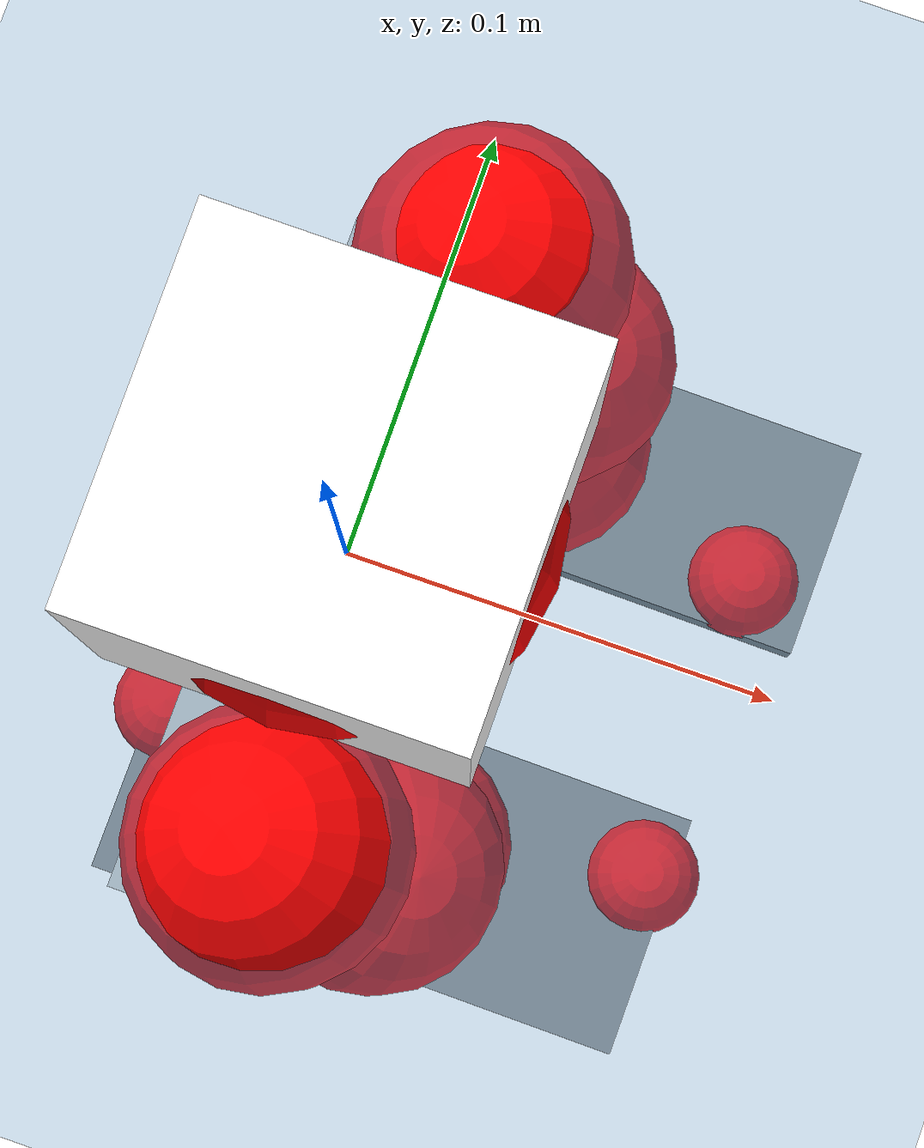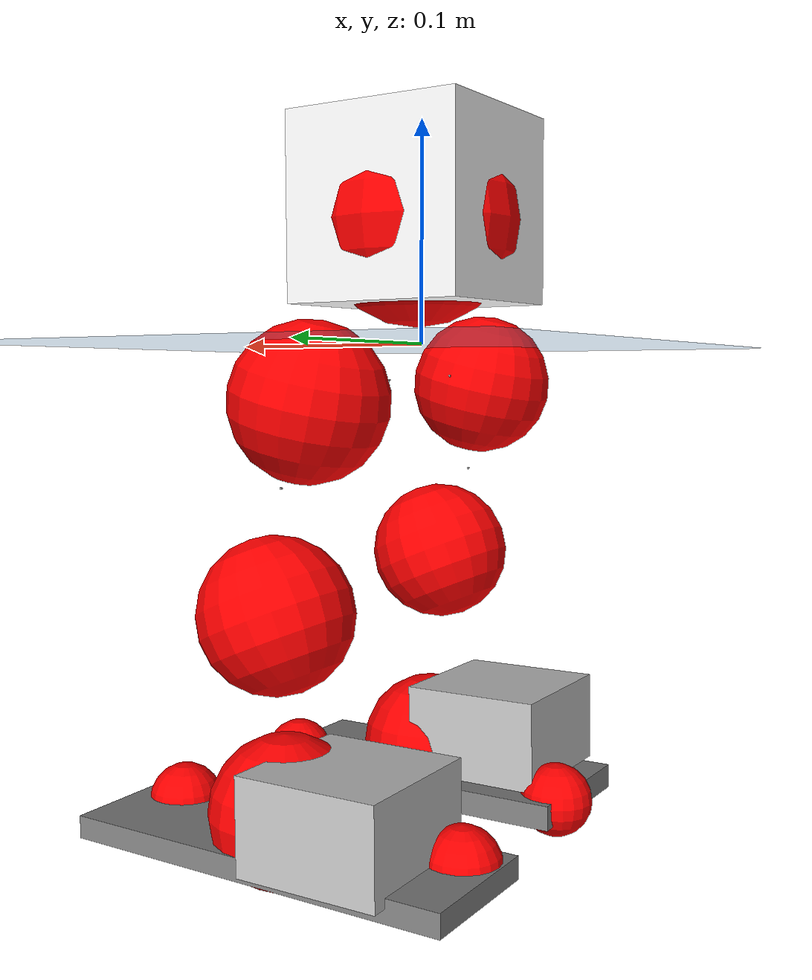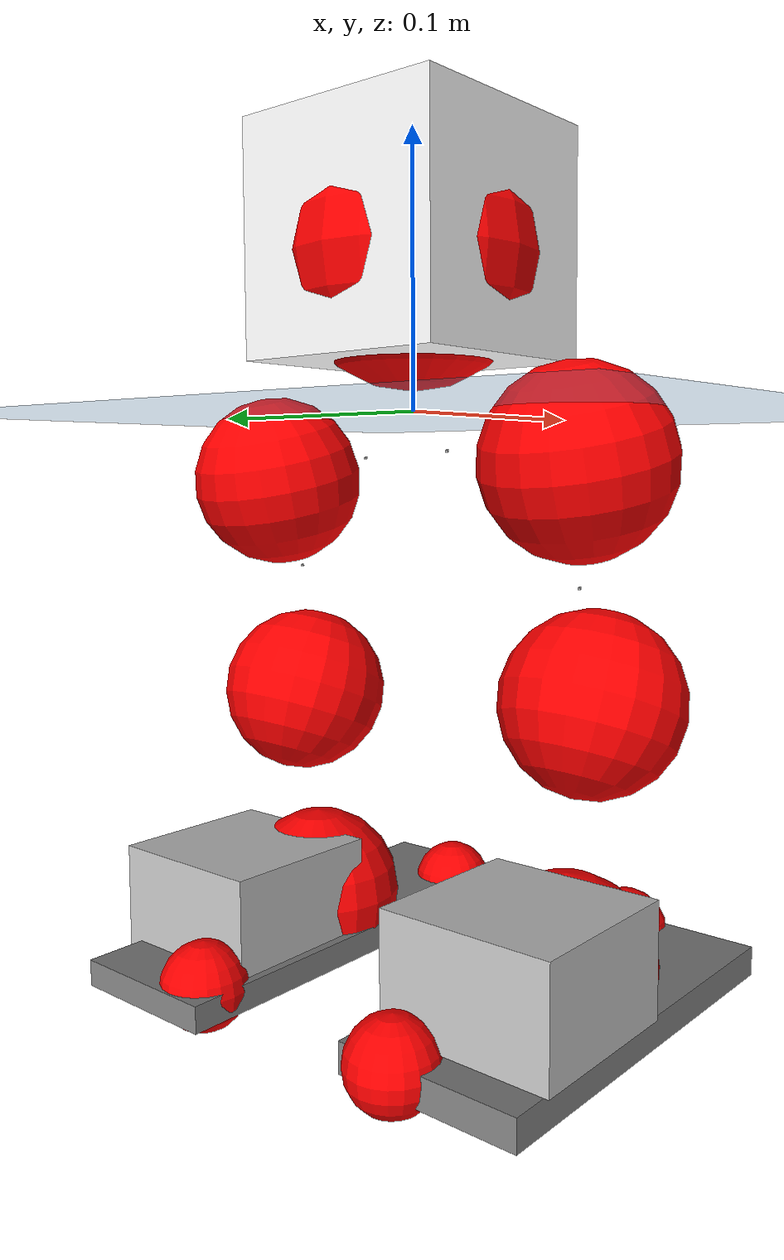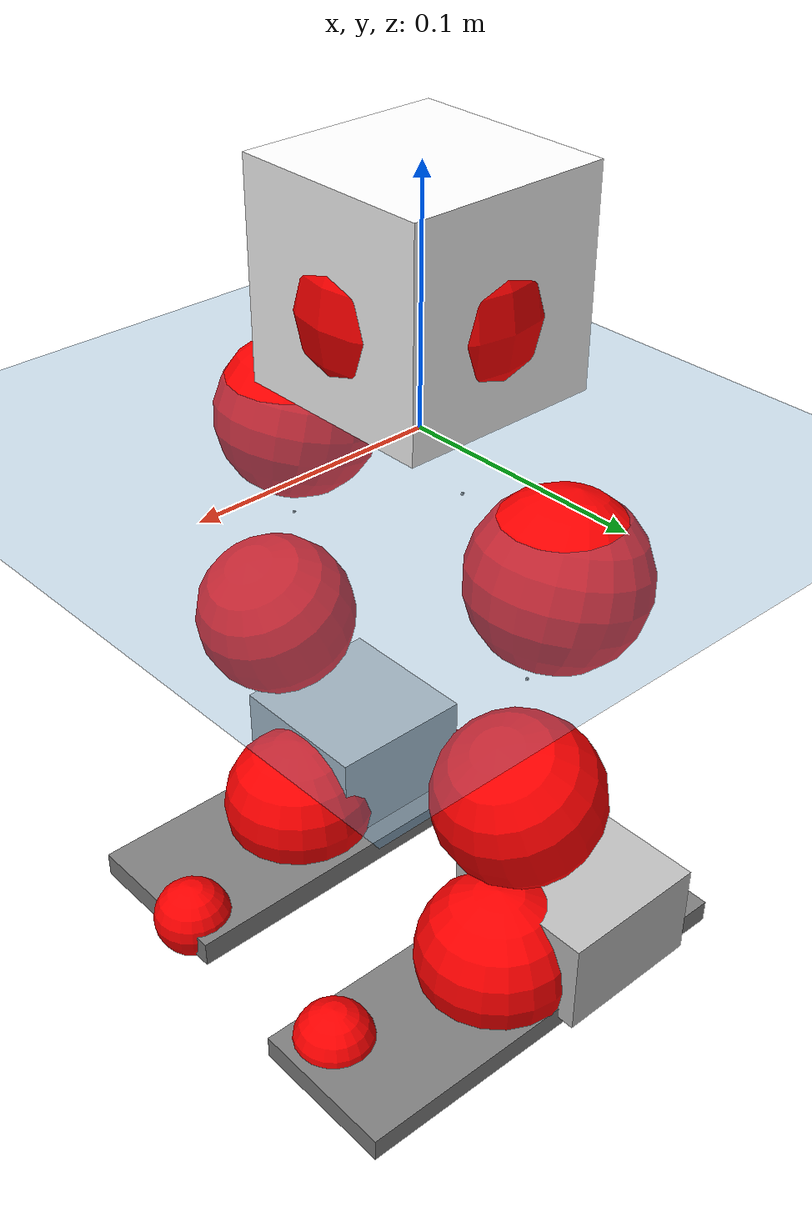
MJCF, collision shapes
<mujoco model="pi_12dof_release_v1">
  <compiler angle="radian" assetdir="assets" balanceinertia="true" inertiafromgeom="false"/>

  <option timestep="0.005" density="1.2" viscosity="2e-05"/>

  <size nkey="1"/>

  <visual>
    <quality shadowsize="8192"/>
    <map shadowclip="0.5"/>
  </visual>

  <default>
    <default class="/">
      <joint armature="0.01" damping="0.01" frictionloss="0.01"/>
      <geom contype="0" conaffinity="0" group="1" solref="-1000 -80"/>
      <site size="0.01 0.005 0.005" group="5"/>
      <general forcelimited="true" biastype="affine" gainprm="20" biasprm="0 -20 -0.5"/>
      <default class="foot">
        <geom size="0.0845 0.036 0.005" type="box" condim="6" group="4" priority="1" friction="0.9 0.2 0.2" solimp="0.015 1 0.005"/>
      </default>
      <default class="reward_collision_sphere">
        <geom group="5" rgba="1 0 0 1"/>
      </default>
    </default>
  </default>

  <asset>
    <texture type="skybox" colorspace="auto" name="//unnamed_texture_0" builtin="gradient" rgb1="0.95 0.95 0.95" rgb2="0.95 0.95 0.95" width="100" height="600"/>
    <texture type="2d" colorspace="auto" name="texplane" builtin="checker" rgb1="0.345 0.575 0.748" rgb2="0.345 0.575 0.748" markrgb="1 1 1" width="512" height="512"/>
    <material name="MatPlane" class="/" texture="texplane" texuniform="true" texrepeat="2 2" specular="0.9"/>
    <mesh name="baselink_1" class="/" file="baselink_1.STL"/>
    <mesh name="r_hip_pitch_link" class="/" file="r_hip_pitch_link.STL"/>
    <mesh name="r_hip_roll_link" class="/" file="r_hip_roll_link.STL"/>
    <mesh name="r_thigh_link" class="/" file="r_thigh_link.STL"/>
    <mesh name="r_calf_link" class="/" file="r_calf_link.STL"/>
    <mesh name="r_ankle_pitch_link" class="/" file="r_ankle_pitch_link.STL"/>
    <mesh name="r_ankle_roll_link" class="/" file="r_ankle_roll_link.STL"/>
    <mesh name="l_hip_pitch_link" class="/" file="l_hip_pitch_link.STL"/>
    <mesh name="l_hip_roll_link" class="/" file="l_hip_roll_link.STL"/>
    <mesh name="l_thigh_link" class="/" file="l_thigh_link.STL"/>
    <mesh name="l_calf_link" class="/" file="l_calf_link.STL"/>
    <mesh name="l_ankle_pitch_link" class="/" file="l_ankle_pitch_link.STL"/>
    <mesh name="l_ankle_roll_link" class="/" file="l_ankle_roll_link.STL"/>
  </asset>

  <worldbody>
    <geom name="floor" class="/" size="100 100 0.125" type="plane" group="0" material="MatPlane"/>
    <light name="toplight_shadow" class="/" pos="0 0 5" dir="0.0990148 0.0990148 -0.990148" type="directional" ambient="0.04 0.04 0.04" diffuse="0.55 0.55 0.55" specular="0.12 0.12 0.12"/>
    <light name="toplight_fill" class="/" pos="0 0 5" dir="0.0990148 0.0990148 -0.990148" type="directional" castshadow="false" ambient="0.04 0.04 0.04" diffuse="0.3 0.3 0.3" specular="0.08 0.08 0.08"/>
    <body name="trunk" pos="0.00141361 0.000947215 0.00983857" quat="0.99999 -0.0041086 0.00160996 -0.000195781">
      <inertial pos="0.00555731 -0.00730719 0.0269956" quat="0.671375 -0.0164988 0.015617 0.74077" mass="1.2061" diaginertia="0.0131054 0.00267443 0.000357356"/>
      <joint name="//unnamed_joint_0" type="free"/>
      <geom name="//unnamed_geom_1" class="/" type="mesh" density="0" rgba="1 1 1 1" mesh="baselink_1"/>
      <geom name="//unnamed_geom_2" class="/" size="0.0421532 0.0421532 0.0421532" pos="0 0 0.050126" type="box" rgba="1 1 1 1"/>
      <geom name="//unnamed_geom_3" class="reward_collision_sphere" size="0.0463685" pos="0 0 0.0438603"/>
      <site name="imu" class="/" pos="0.00336145 -0.0202348 0.0323491" size="0.00843064"/>
      <camera name="track" class="/" pos="0 -1.61567 0" quat="0.707107 0.707107 0 0" mode="trackcom"/>
      <camera name="ego_camera" class="/" pos="0.0821086 0 0.112784" quat="-0.5 -0.5 0.5 0.5"/>
      <body name="r_hip_pitch_link" pos="-0.00555745 -0.0197443 -0.0243322" quat="0.992211 5.39751e-05 -0.12457 7.83718e-06">
        <inertial pos="0.00934784 -0.0475605 0.00930833" quat="-0.0624508 0.71266 -0.0444628 0.697308" mass="0.233716" diaginertia="0.00016586 3.56121e-05 8.45747e-06"/>
        <joint name="r_hip_pitch_joint" class="/" pos="0 0 0" axis="0.00561075 -0.99995 0.00825606" stiffness="0.0139097" range="-1.72958 1.25179" armature="0.00854253" damping="0.0321991" frictionloss="0.00885701"/>
        <geom name="//unnamed_geom_4" class="/" type="mesh" density="0" rgba="0.75294 0.75294 0.75294 1" mesh="r_hip_pitch_link"/>
        <geom name="//unnamed_geom_5" class="/" size="0.000421532 0.000421532 0.000421532" type="box" rgba="0.75294 0.75294 0.75294 1"/>
        <body name="r_hip_roll_link" pos="0.00692346 -0.0480478 -0.00637692" quat="0.999999 -0.000291398 -0.000605948 -0.0012172">
          <inertial pos="0.00447727 -0.000291128 -0.0421301" quat="0.706031 -0.0832437 -0.0808385 0.69861" mass="0.255895" diaginertia="0.000580098 0.000105314 1.47675e-05"/>
          <joint name="r_hip_roll_joint" class="/" pos="0 0 0" axis="-0.999585 -0.0224486 0.0180269" stiffness="0.00733827" range="-0.111644 0.462325" armature="0.0128951" damping="0.0133822" frictionloss="0.00660616"/>
          <geom name="//unnamed_geom_6" class="/" type="mesh" density="0" rgba="0.75294 0.75294 0.75294 1" mesh="r_hip_roll_link"/>
          <geom name="//unnamed_geom_7" class="/" size="0.000421532 0.000421532 0.000421532" type="box" rgba="0.75294 0.75294 0.75294 1"/>
          <geom name="//unnamed_geom_8" class="reward_collision_sphere" size="0.0337226"/>
          <body name="r_thigh_link" pos="-0.00465695 0.00279742 -0.0422628" quat="0.999999 -0.00144548 -1.11424e-06 0.000307121">
            <inertial pos="0.0111678 0.0101396 -0.0330426" quat="0.741531 0.67088 0.00186954 0.0068963" mass="0.0669785" diaginertia="0.000212484 3.2468e-05 5.39236e-06"/>
            <joint name="r_thigh_joint" class="/" pos="0 0 0" axis="-0.00190974 -0.000298995 -0.999998" range="-0.240474 0.4463" armature="0.012295" damping="0" frictionloss="0.0080351"/>
            <geom name="//unnamed_geom_9" class="/" type="mesh" density="0" rgba="0.75294 0.75294 0.75294 1" mesh="r_thigh_link"/>
            <geom name="//unnamed_geom_10" class="/" size="0.000421532 0.000421532 0.000421532" type="box" rgba="0.75294 0.75294 0.75294 1"/>
            <body name="r_calf_link" pos="0.00349874 0.00350905 -0.0443806" quat="0.946553 0.000313869 0.322526 -0.00382374">
              <inertial pos="0.00130504 -0.000206224 -0.0420685" quat="0.998816 -0.00231784 -0.0465558 -0.0139262" mass="0.430594" diaginertia="0.00565261 0.00119009 1.72969e-05"/>
              <joint name="r_calf_joint" class="/" pos="0 0 0" axis="0.00116185 -0.999999 4.84663e-05" stiffness="0.00445198" range="-1.67176 0.579939" armature="0.00823449" damping="0.0201512" frictionloss="0.00916439"/>
              <geom name="//unnamed_geom_11" class="/" type="mesh" density="0" rgba="0.75294 0.75294 0.75294 1" mesh="r_calf_link"/>
              <geom name="//unnamed_geom_12" class="/" size="0.000421532 0.000421532 0.000421532" type="box" rgba="0.75294 0.75294 0.75294 1"/>
              <geom name="//unnamed_geom_13" class="reward_collision_sphere" size="0.0337226"/>
              <body name="r_ankle_pitch_link" pos="-0.00125201 0.00463793 -0.0912163" quat="0.980174 0.000596867 -0.198138 0.000831956">
                <inertial pos="0.00784222 0.00339534 0.000890303" quat="0.000441964 0.708089 -0.00201098 0.70612" mass="0.0975161" diaginertia="0.000497319 8.31981e-05 1.12735e-05"/>
                <joint name="r_ankle_pitch_joint" class="/" pos="0 0 0" axis="0.0199866 -0.999725 0.0122853" range="-1.22619 0.516975" armature="0.00917799" damping="0" frictionloss="0.00887904"/>
                <geom name="//unnamed_geom_14" class="/" type="mesh" density="0" rgba="0.75294 0.75294 0.75294 1" mesh="r_ankle_pitch_link"/>
                <geom name="//unnamed_geom_15" class="/" size="0.0328795 0.0337226 0.0210766" type="box" rgba="0.75294 0.75294 0.75294 1"/>
                <body name="r_ankle_roll_link" pos="0.091748 0.00568075 -0.000747748" quat="1 0.000171474 2.66055e-05 -0.000100834">
                  <inertial pos="-0.0263481 0.00868706 -0.0159071" quat="0.570032 0.413172 0.396123 0.589439" mass="0.339773" diaginertia="0.00192495 0.000354383 3.20601e-05"/>
                  <joint name="r_ankle_roll_joint" class="/" pos="0 0 0" axis="-0.999915 -0.0091362 0.00928987" range="0.0643071 0.0702242" armature="0.0117731" damping="0.0123032" frictionloss="0.0122068"/>
                  <geom name="//unnamed_geom_16" class="/" type="mesh" density="0" rgba="0.75294 0.75294 0.75294 1" mesh="r_ankle_roll_link"/>
                  <geom name="//unnamed_geom_17" class="/" type="mesh" rgba="0.75294 0.75294 0.75294 1" mesh="r_ankle_roll_link"/>
                  <geom name="right_foot" class="foot" size="0.0803746 0.0360463 0.00571411" pos="-0.0558338 0 -0.0275693"/>
                  <geom name="//unnamed_geom_19" class="reward_collision_sphere" size="0.0337226" pos="-0.0547391 0 -0.0125315"/>
                  <geom name="//unnamed_geom_20" class="reward_collision_sphere" size="0.0168613" pos="0.0164217 0.0161567 -0.025063"/>
                  <geom name="//unnamed_geom_21" class="reward_collision_sphere" size="0.0168613" pos="-0.131374 0.0161567 -0.025063"/>
                  <site name="right_foot" class="foot" pos="-0.0558338 0 -0.0275693" size="0.00843064"/>
                </body>
              </body>
            </body>
          </body>
        </body>
      </body>
      <body name="l_hip_pitch_link" pos="0.000619465 0.0241269 -0.0261464" quat="0.992205 -0.000369249 -0.124616 0.000296982">
        <inertial pos="0.00165959 0.0522374 0.00966784" quat="-0.0308854 0.70459 0.0250584 0.708499" mass="0.240275" diaginertia="0.000219602 3.70532e-05 1.10201e-05"/>
        <joint name="l_hip_pitch_joint" class="/" pos="0 0 0" axis="-0.0375888 0.999273 -0.00641509" stiffness="0.0271617" range="-1.05437 1.8195" armature="0.00826041" damping="0.0348861" frictionloss="0.00699013"/>
        <geom name="//unnamed_geom_22" class="/" type="mesh" density="0" rgba="0.75294 0.75294 0.75294 1" mesh="l_hip_pitch_link"/>
        <geom name="//unnamed_geom_23" class="/" size="0.000421532 0.000421532 0.000421532" type="box" rgba="0.75294 0.75294 0.75294 1"/>
        <body name="l_hip_roll_link" pos="0.00309246 0.0534468 -0.00938486" quat="0.999996 0.000152945 0.00287734 -0.000660442">
          <inertial pos="-0.0126747 0.00600974 -0.0277637" quat="0.698352 -0.0760691 -0.0784384 0.707365" mass="0.195801" diaginertia="0.000401463 8.35469e-05 9.9861e-06"/>
          <joint name="l_hip_roll_joint" class="/" pos="0 0 0" axis="-0.99998 0.00622031 -0.0011104" stiffness="0.00332215" range="-0.492216 0.196103" armature="0.0105686" damping="0" frictionloss="0.00830421"/>
          <geom name="//unnamed_geom_24" class="/" type="mesh" density="0" rgba="0.75294 0.75294 0.75294 1" mesh="l_hip_roll_link"/>
          <geom name="//unnamed_geom_25" class="/" size="0.000421532 0.000421532 0.000421532" type="box" rgba="0.75294 0.75294 0.75294 1"/>
          <geom name="//unnamed_geom_26" class="reward_collision_sphere" size="0.0337226"/>
          <body name="l_thigh_link" pos="0.00493243 0.00082693 -0.0379535" quat="0.999995 -0.00166877 -0.00276961 -0.000414896">
            <inertial pos="0.00956974 -0.00630702 -0.0198238" quat="0.704063 0.710009 0.0130081 0.00355486" mass="0.0739804" diaginertia="0.000210159 3.62592e-05 5.81634e-06"/>
            <joint name="l_thigh_joint" class="/" pos="0 0 0" axis="-0.00253544 -0.00277748 -0.999993" range="-0.644183 0.262538" armature="0.00879637" damping="0.00457135" frictionloss="0.00411432"/>
            <geom name="//unnamed_geom_27" class="/" type="mesh" density="0" rgba="0.75294 0.75294 0.75294 1" mesh="l_thigh_link"/>
            <geom name="//unnamed_geom_28" class="/" size="0.000421532 0.000421532 0.000421532" type="box" rgba="0.75294 0.75294 0.75294 1"/>
            <body name="l_calf_link" pos="-0.0108589 0.001705 -0.0520241" quat="0.94745 0.000247534 0.319904 -0.00018952">
              <inertial pos="0.00718067 0.00721579 -0.0492717" quat="0.999291 -0.0312429 0.00541502 -0.0202973" mass="0.486697" diaginertia="0.00430173 0.00107865 1.41445e-05"/>
              <joint name="l_calf_joint" class="/" pos="0 0 0" axis="-0.00756886 0.999856 -0.0152007" stiffness="0.0343697" range="-0.494461 1.4782" armature="0.0083961" damping="0.029351" frictionloss="0.00641191"/>
              <geom name="//unnamed_geom_29" class="/" type="mesh" density="0" rgba="0.75294 0.75294 0.75294 1" mesh="l_calf_link"/>
              <geom name="//unnamed_geom_30" class="/" size="0.000421532 0.000421532 0.000421532" type="box" rgba="0.75294 0.75294 0.75294 1"/>
              <geom name="//unnamed_geom_31" class="reward_collision_sphere" size="0.0337226"/>
              <body name="l_ankle_pitch_link" pos="-0.00192316 -0.000626941 -0.0872906" quat="0.980131 0.000727517 -0.19835 -0.000334773">
                <inertial pos="0.00302861 0.0027083 0.00806108" quat="-0.0264837 0.71057 0.00172407 0.703126" mass="0.120358" diaginertia="0.000442286 7.57789e-05 1.17084e-05"/>
                <joint name="l_ankle_pitch_joint" class="/" pos="0 0 0" axis="-0.000831309 0.999994 -0.00328792" range="-0.407929 1.35028" armature="0.00956337" damping="0.0581893" frictionloss="0.0112117"/>
                <geom name="//unnamed_geom_32" class="/" type="mesh" density="0" rgba="0.75294 0.75294 0.75294 1" mesh="l_ankle_pitch_link"/>
                <geom name="//unnamed_geom_33" class="/" size="0.0328795 0.0337226 0.0210766" type="box" rgba="0.75294 0.75294 0.75294 1"/>
                <body name="l_ankle_roll_link" pos="0.0913102 -0.00621303 0.0064004" quat="0.999985 -0.00240372 -0.00254456 -0.0042563">
                  <inertial pos="-0.0280216 -0.000948968 -0.0113441" quat="0.53217 0.420683 0.438209 0.58974" mass="0.291723" diaginertia="0.00166245 0.000321384 2.87594e-05"/>
                  <joint name="l_ankle_roll_joint" class="/" pos="0 0 0" axis="-0.999995 0.00325094 0.000628164" range="-0.137584 0.369217" armature="0.00838295" damping="0.0327414" frictionloss="0.00968946"/>
                  <geom name="//unnamed_geom_34" class="/" type="mesh" density="0" rgba="0.75294 0.75294 0.75294 1" mesh="l_ankle_roll_link"/>
                  <geom name="//unnamed_geom_35" class="/" type="mesh" rgba="0.75294 0.75294 0.75294 1" mesh="l_ankle_roll_link"/>
                  <geom name="left_foot" class="foot" size="0.0927044 0.0319298 0.00509868" pos="-0.0558338 0 -0.0275693"/>
                  <geom name="//unnamed_geom_37" class="reward_collision_sphere" size="0.0337226" pos="-0.0547391 0 -0.0125315"/>
                  <geom name="//unnamed_geom_38" class="reward_collision_sphere" size="0.0168613" pos="0.0164217 -0.0161567 -0.025063"/>
                  <geom name="//unnamed_geom_39" class="reward_collision_sphere" size="0.0168613" pos="-0.131374 -0.0161567 -0.025063"/>
                  <site name="left_foot" class="foot" pos="-0.0558338 0 -0.0275693" size="0.00843064"/>
                </body>
              </body>
            </body>
          </body>
        </body>
      </body>
    </body>
  </worldbody>

  <contact>
    <pair class="/" geom1="floor" geom2="right_foot" name="//unnamed_contact_1"/>
    <pair class="/" geom1="floor" geom2="left_foot" name="//unnamed_contact_0"/>
  </contact>

  <actuator>
    <general name="r_hip_pitch_joint" class="/" joint="r_hip_pitch_joint" forcerange="-12.6109 12.6109" gainprm="21.4496" biasprm="0 -21.4496 -0.51089"/>
    <general name="r_hip_roll_joint" class="/" joint="r_hip_roll_joint" forcerange="-24.6536 24.6536" gainprm="21.4496" biasprm="0 -21.4496 -0.51089"/>
    <general name="r_thigh_joint" class="/" joint="r_thigh_joint" forcerange="-17.1736 17.1736" gainprm="21.4496" biasprm="0 -21.4496 -0.51089"/>
    <general name="r_calf_joint" class="/" joint="r_calf_joint" forcerange="-10.4477 10.4477" gainprm="21.4496" biasprm="0 -21.4496 -0.51089"/>
    <general name="r_ankle_pitch_joint" class="/" joint="r_ankle_pitch_joint" forcerange="-19.2587 19.2587" gainprm="21.4496" biasprm="0 -21.4496 -0.51089"/>
    <general name="r_ankle_roll_joint" class="/" joint="r_ankle_roll_joint" forcerange="-24.549 24.549" gainprm="21.4496" biasprm="0 -21.4496 -0.51089"/>
    <general name="l_hip_pitch_joint" class="/" joint="l_hip_pitch_joint" forcerange="-17.0935 17.0935" gainprm="21.4496" biasprm="0 -21.4496 -0.51089"/>
    <general name="l_hip_roll_joint" class="/" joint="l_hip_roll_joint" forcerange="-18.2283 18.2283" gainprm="21.4496" biasprm="0 -21.4496 -0.51089"/>
    <general name="l_thigh_joint" class="/" joint="l_thigh_joint" forcerange="-15.1365 15.1365" gainprm="21.4496" biasprm="0 -21.4496 -0.51089"/>
    <general name="l_calf_joint" class="/" joint="l_calf_joint" forcerange="-17.0614 17.0614" gainprm="21.4496" biasprm="0 -21.4496 -0.51089"/>
    <general name="l_ankle_pitch_joint" class="/" joint="l_ankle_pitch_joint" forcerange="-15.3175 15.3175" gainprm="21.4496" biasprm="0 -21.4496 -0.51089"/>
    <general name="l_ankle_roll_joint" class="/" joint="l_ankle_roll_joint" forcerange="-16.698 16.698" gainprm="21.4496" biasprm="0 -21.4496 -0.51089"/>
  </actuator>

  <sensor>
    <gyro site="imu" name="imu_angular_velocity"/>
    <velocimeter site="imu" name="imu_linear_velocity"/>
    <framelinvel objtype="site" objname="left_foot" name="left_foot_global_linear_velocity"/>
    <framelinvel objtype="site" objname="right_foot" name="right_foot_global_linear_velocity"/>
  </sensor>

  <keyframe>
    <key name="home" qpos="0 0 0.291 1 0 0 0 0.4 0 0 -0.8 0.4 0 -0.4 0 0 0.8 -0.4 0"/>
  </keyframe>
</mujoco>
